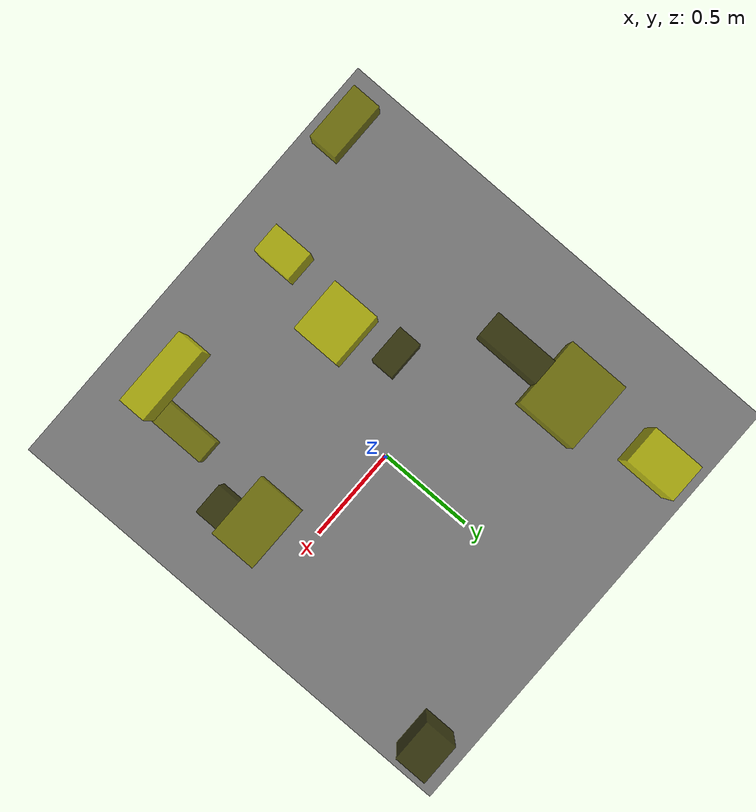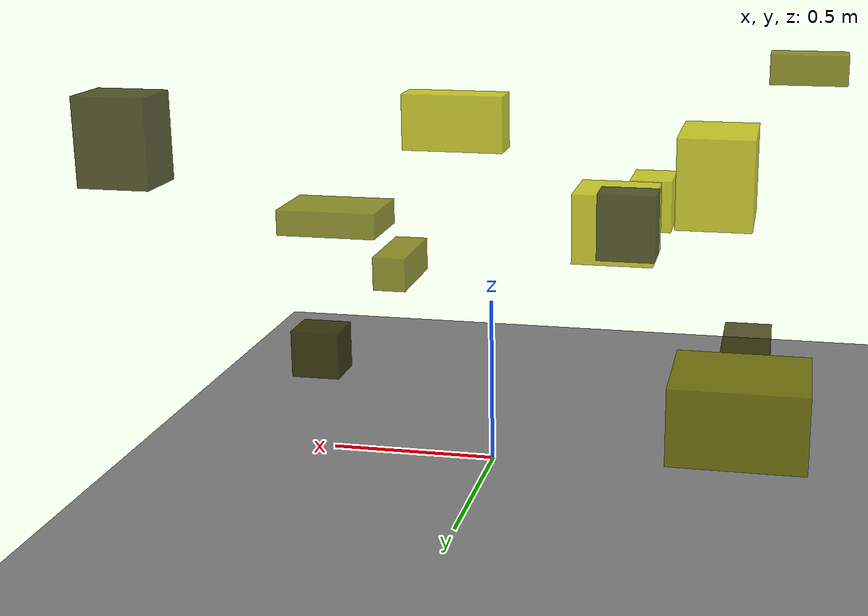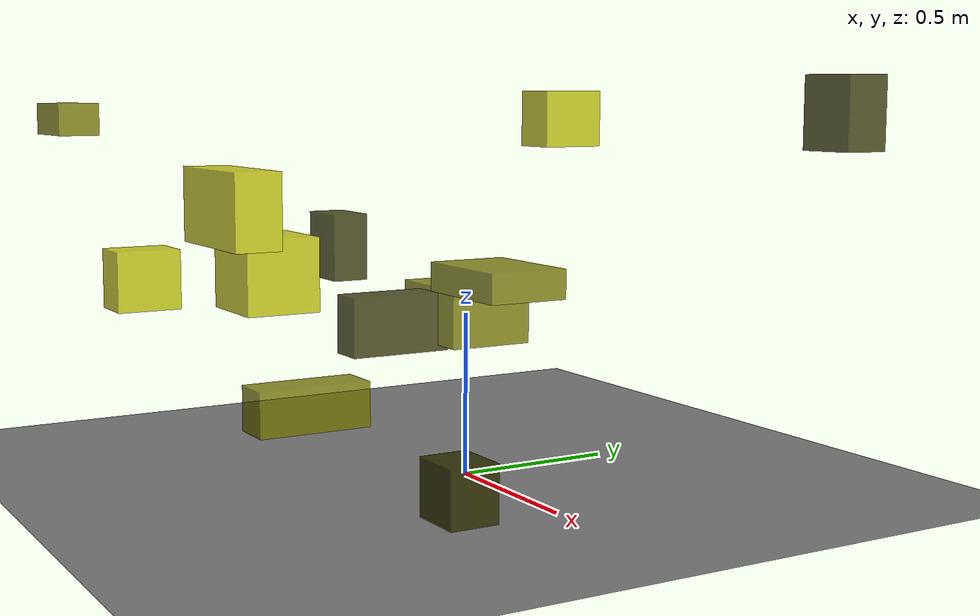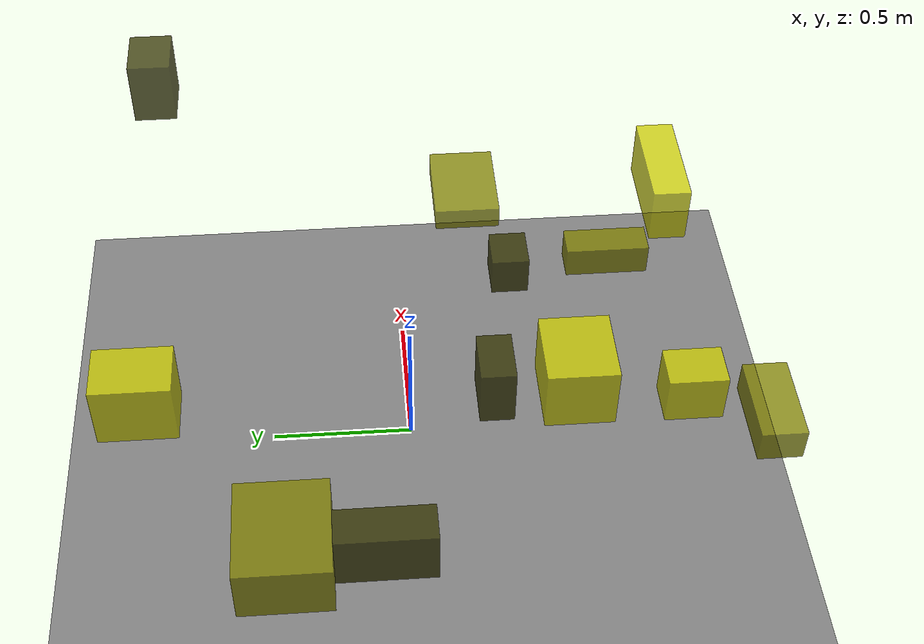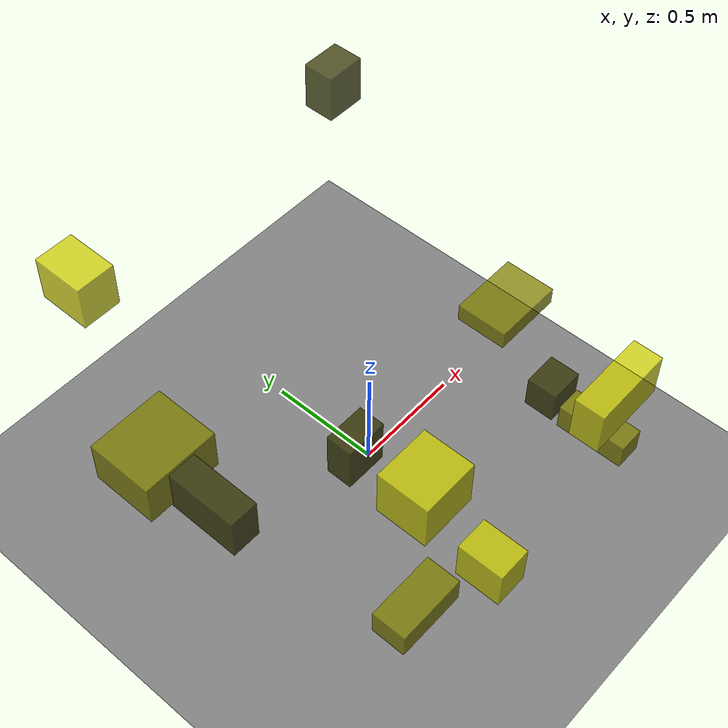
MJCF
<?xml version="1.0"?>
<mujoco model="obstacle_scene">
  <compiler angle="radian" coordinate="local"/>
  <option timestep="0.001" gravity="0 0 -9.81"/>

  <asset>
    <material name="obstacle_mat" rgba="0.8 0.8 0.0 0.8"/>
    <material name="ground_mat" rgba="0.5 0.5 0.5 1"/>
  </asset>

  <worldbody>
    <!-- Ground plane -->
    <geom name="ground" type="plane" size="3 3 0.1" material="ground_mat"/>

    <!-- Obstacles -->
    <body name="obstacle_0" pos="-0.371395 -0.251001 0.689096">
      <geom name="obs_0" type="box" size="0.089542 0.055801 0.103293" rgba="0.2 0.2 0.0 0.8"/>
    </body>
    <body name="obstacle_1" pos="0.496452 -0.761901 0.384699">
      <geom name="obs_1" type="box" size="0.057557 0.150665 0.058534" rgba="0.5 0.5 0.0 0.8"/>
    </body>
    <body name="obstacle_2" pos="-0.696451 0.816020 1.073456">
      <geom name="obs_2" type="box" size="0.084137 0.114892 0.101258" rgba="0.8 0.8 0.0 0.8"/>
    </body>
    <body name="obstacle_3" pos="-0.752206 0.146092 0.358663">
      <geom name="obs_3" type="box" size="0.066265 0.186183 0.104728" rgba="0.2 0.2 0.0 0.8"/>
    </body>
    <body name="obstacle_4" pos="0.549331 -0.230610 0.677494">
      <geom name="obs_4" type="box" size="0.156986 0.111992 0.039910" rgba="0.5 0.5 0.0 0.8"/>
    </body>
    <body name="obstacle_5" pos="-0.302454 -0.526572 0.625521">
      <geom name="obs_5" type="box" size="0.131366 0.116032 0.114046" rgba="0.8 0.8 0.0 0.8"/>
    </body>
    <body name="obstacle_6" pos="0.712491 0.835819 1.112203">
      <geom name="obs_6" type="box" size="0.090060 0.070731 0.109355" rgba="0.2 0.2 0.0 0.8"/>
    </body>
    <body name="obstacle_7" pos="-0.892725 -0.958674 1.084686">
      <geom name="obs_7" type="box" size="0.129361 0.063351 0.050356" rgba="0.5 0.5 0.0 0.8"/>
    </body>
    <body name="obstacle_8" pos="0.318644 -0.885057 0.879363">
      <geom name="obs_8" type="box" size="0.180151 0.061717 0.098870" rgba="0.8 0.8 0.0 0.8"/>
    </body>
    <body name="obstacle_9" pos="0.684171 -0.426507 0.165968">
      <geom name="obs_9" type="box" size="0.081533 0.070434 0.078988" rgba="0.2 0.2 0.0 0.8"/>
    </body>
    <body name="obstacle_10" pos="-0.753413 0.447158 0.377938">
      <geom name="obs_10" type="box" size="0.178878 0.155199 0.104185" rgba="0.5 0.5 0.0 0.8"/>
    </body>
    <body name="obstacle_11" pos="-0.382359 -0.893460 0.620371">
      <geom name="obs_11" type="box" size="0.072134 0.095368 0.088865" rgba="0.8 0.8 0.0 0.8"/>
    </body>
  </worldbody>
</mujoco>
